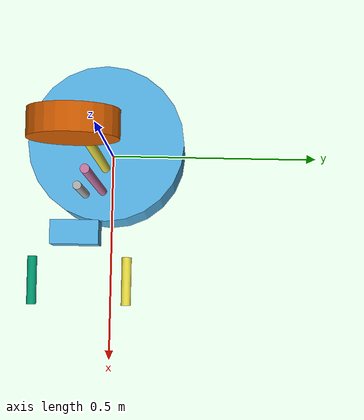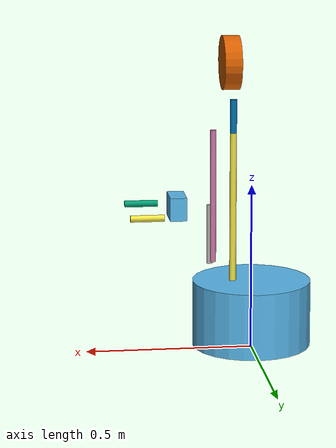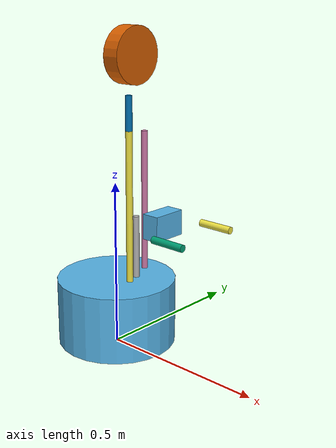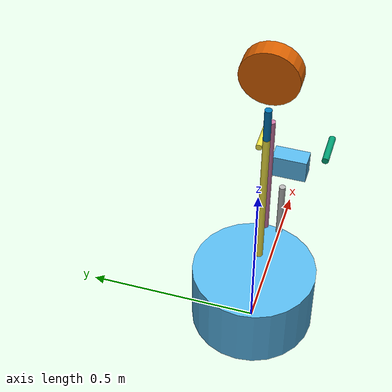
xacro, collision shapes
<?xml version="1.0" encoding="utf-8"?>
<robot name="mini1.5" xmlns:xacro="http://ros.org/wiki/xacro">
  <xacro:include filename="$(find mini_description)/urdf/mini1.5/common_properties.urdf.xacro"/>
  <xacro:include filename="$(find mini_description)/urdf/mini1.5/mini1.5_gazebo.urdf.xacro"/>
  <xacro:include filename="$(find mini_description)/urdf/mini1.5/base.urdf.xacro" />
  <xacro:include filename="$(find mini_description)/urdf/mini1.5/torso_lower.urdf.xacro" />
  <xacro:include filename="$(find mini_description)/urdf/mini1.5/torso_upper.urdf.xacro" />
  <xacro:include filename="$(find mini_description)/urdf/mini1.5/head.urdf.xacro" />
  <xacro:include filename="$(find mini_description)/urdf/mini1.5/god_arm_upper.urdf.xacro" />
  <xacro:include filename="$(find mini_description)/urdf/mini1.5/god_arm_fore.urdf.xacro" />
  <xacro:include filename="$(find mini_description)/urdf/mini1.5/god_wrist_pitch.urdf.xacro" />
  <xacro:include filename="$(find mini_description)/urdf/mini1.5/god_wrist_roll.urdf.xacro" />
  <xacro:include filename="$(find mini_description)/urdf/mini1.5/god_finger_right.urdf.xacro" />
  <xacro:include filename="$(find mini_description)/urdf/mini1.5/god_finger_left.urdf.xacro" />
  <xacro:include filename="$(find mini_description)/urdf/mini1.5/lidar.urdf.xacro" />
  <material name="Red">
    <color rgba="0.8 0.0 0.0 1.0"/>
  </material>

  <!-- Mini Kobuki base  -->
  <base name="base" />

  <!-- Add the Hokuyo lidar -->
  <lidar name="lidar" parent="base" />

  <!-- Add the torso lower -->
  <torso_lower name="torso_lower" parent="base" />

  <!-- Add the torso upper -->
  <torso_upper name="torso_upper" parent="torso_lower" />

  <!-- Add the head -->
  <head name="head" parent="torso_upper" />

  <!-- Add the upper arm -->
  <arm_upper name="arm_upper" parent="torso_upper" />

 <!-- Add the fore arm -->
  <arm_fore name="arm_fore" parent="arm_upper" />

  <!-- Add the wrist pitch -->
  <wrist_pitch name="wrist_pitch" parent="arm_fore" />

  <!-- Add the wrist roll -->
  <wrist_roll  name="wrist_roll" parent="wrist_pitch" />

  <!-- Add the right hand -->
  <finger_right name="finger_right" parent="wrist_roll" />

  <!-- Add the left hand -->
  <finger_left name="finger_left" parent="wrist_roll" />

  <!-- Kobuki Gazebo simulation details -->
  <mini_sim/>
</robot>

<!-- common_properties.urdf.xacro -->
<!--
  Various useful properties such as constants and materials
 -->
<robot name="xacro_properties" xmlns:xacro="http://ros.org/wiki/xacro">
  <xacro:property name="M_PI" value="3.1415926535897931" />
  <xacro:property name="base_mesh_scale" value="0.01" />
  <xacro:property name="mesh_scale" value="0.0095" />

  <xacro:property name="material_white">
    <material name="white">
      <color rgba="1 1 1 1"/>
    </material>
  </xacro:property>
  <xacro:property name="material_grey">
    <material name="grey">
      <color rgba="0.5 0.5 0.5 1"/>
    </material>
  </xacro:property>
  <xacro:property name="material_light_grey">
    <material name="light_grey">
      <color rgba="0.6 0.6 0.6 1"/>
    </material>
  </xacro:property>
  <xacro:property name="material_dark_grey">
    <material name="dark_grey">
      <color rgba="0.3 0.3 0.3 1"/>
    </material>
  </xacro:property>
  <xacro:property name="material_black">
    <material name="black">
      <color rgba="0.1 0.1 0.1 1"/>
    </material>
  </xacro:property>
  <xacro:property name="material_red">
    <material name="red">
      <color rgba="1 0 0 1"/>
    </material>
  </xacro:property>
  <xacro:property name="material_green">
    <material name="green">
      <color rgba="0.0 0.8 0.0 1"/>
    </material>
  </xacro:property>
  <xacro:property name="material_blue">
    <material name="blue">
      <color rgba="0.0 0.0 1.0 1"/>
    </material>
  </xacro:property>
  <xacro:property name="material_grey_blue">
    <material name="grey_blue">
      <color rgba="0.4 0.4 1.0 1"/>
    </material>
  </xacro:property>

  <material name="black">
    <color rgba="0.0 0.0 0.0 1"/>
  </material>

  <material name="silver">
    <color rgba="0.75 0.75 0.75 1"/>
  </material>

  <material name="white">
    <color rgba="1.0 1.0 1.0 1"/>
  </material>

  <material name="yellow">
    <color rgba="1.0 1.0 0.0 1"/>
  </material>

  <material name="orange">
    <color rgba="1.0 0.65 0.0 1"/>
  </material>

</robot>

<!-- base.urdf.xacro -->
<robot name="base" xmlns:xacro="http://ros.org/wiki/xacro">

  <!-- Mini Kobuki -->
  <macro name="base" params="name">
    <link name="base_footprint"/>
    <joint name="base_joint" type="fixed">
      <origin xyz="0 0 0.0102" rpy="0 0 0" />
      <parent link="base_footprint"/>
      <child link="base_link" />
    </joint>
    <link name="base_link">
      <visual>
        <geometry>
          <!-- new mesh -->
          <mesh filename="package://mini_description/meshes/mini1.5/base_mini.dae" scale="${base_mesh_scale} ${base_mesh_scale} ${base_mesh_scale}" />
        </geometry>
        <origin xyz="-0.07 -0.14  -0.03" rpy="0 0 ${M_PI/2}"/>
      </visual>
      <collision>
        <geometry>
	  <cylinder length="0.20" radius="0.178"/>
        </geometry>
	<origin xyz="0.0 0 0.1" rpy="0 0 0"/>
      </collision>
      <inertial>
        <!-- COM experimentally determined -->
        <origin xyz="0.01 0 0"/>
        <mass value="2.4"/> <!-- 2.4/2.6 kg for small/big battery pack -->
        <inertia ixx="0.019995" ixy="0.0" ixz="0.0"
                 iyy="0.019995" iyz="0.0"
                 izz="0.03675" />
      </inertial>
    </link>

    <joint name="wheel_left_joint" type="continuous">
      <parent link="base_link"/>
      <child link="wheel_left_link"/>
      <origin xyz="0.00 ${0.23/2} 0.0250" rpy="${-M_PI/2} 0 0"/>
      <axis xyz="0 0 1"/>
    </joint>
    <link name="wheel_left_link">
      <visual>
        <geometry>
          <mesh filename="package://mini_description/meshes/mini1.5/wheel.dae"/>
        </geometry>
        <origin xyz="0 0 0" rpy="0 0 0"/>
      </visual>
      <collision>
        <geometry>
          <cylinder length="0.0206" radius="0.0352"/>
        </geometry>
        <origin rpy="0 0 0" xyz="0 0 0"/>
      </collision>
      <inertial>
        <mass value="0.01" />
        <origin xyz="0 0 0" />
        <inertia ixx="0.001" ixy="0.0" ixz="0.0"
                 iyy="0.001" iyz="0.0"
                 izz="0.001" />
      </inertial>
    </link>

    <joint name="wheel_right_joint" type="continuous">
      <parent link="base_link"/>
      <child link="wheel_right_link"/>
      <origin xyz="0.00 -${0.23/2} 0.0250" rpy="${-M_PI/2} 0 0"/>
      <axis xyz="0 0 1"/>
    </joint>
    <link name="wheel_right_link">
      <visual>
        <geometry>
          <mesh filename="package://mini_description/meshes/mini1.5/wheel.dae"/>
        </geometry>
        <origin xyz="0 0 0" rpy="0 0 0"/>
      </visual>
      <collision>
        <geometry>
          <cylinder length="0.0206" radius="0.0350"/>
        </geometry>
        <origin rpy="0 0 0" xyz="0 0 0"/>
      </collision>
      <inertial>
        <mass value="0.01" />
        <origin xyz="0 0 0" />
        <inertia ixx="0.001" ixy="0.0" ixz="0.0"
                 iyy="0.001" iyz="0.0"
                 izz="0.001" />
      </inertial>
    </link>

    <joint name="caster_front_joint" type="fixed">
      <parent link="base_link"/>
      <child link="caster_front_link"/>
      <origin xyz="0.115 0.0 0.007" rpy="${-M_PI/2} 0 0"/>
    </joint>
    <link name="caster_front_link">
      <collision>
        <geometry>
          <cylinder length="0.0176" radius="0.017"/>
        </geometry>
        <origin rpy="0 0 0" xyz="0 0 0"/>
      </collision>
      <inertial>
        <mass value="0.01" />
        <origin xyz="0 0 0" />
        <inertia ixx="0.001" ixy="0.0" ixz="0.0"
                 iyy="0.001" iyz="0.0"
                 izz="0.001" />
      </inertial>
    </link>

    <joint name="caster_back_joint" type="fixed">
      <parent link="base_link"/>
      <child link="caster_back_link"/>
      <origin xyz="-0.135 0.0 0.009" rpy="${-M_PI/2} 0 0"/>
    </joint>
    <link name="caster_back_link">
      <collision>
        <geometry>
          <cylinder length="0.0176" radius="0.017"/>
        </geometry>
        <origin rpy="0 0 0" xyz="0 0 0"/>
      </collision>
      <inertial>
        <mass value="0.01" />
        <origin xyz="0 0 0" />
        <inertia ixx="0.001" ixy="0.0" ixz="0.0"
                 iyy="0.001" iyz="0.0"
                 izz="0.001" />
      </inertial>
    </link>

    <!-- Kobuki's sensors -->
    <joint name="gyro_joint" type="fixed">
      <axis xyz="0 1 0"/>
      <origin xyz="0.056 0.062 0.0202" rpy="0 0 0"/>
      <parent link="base_link"/>
      <child link="gyro_link"/>
    </joint>
    <link name="gyro_link">
      <inertial>
        <mass value="0.001"/>
        <origin xyz="0 0 0" rpy="0 0 0"/>
        <inertia ixx="0.0001" ixy="0" ixz="0"
                 iyy="0.000001" iyz="0"
                 izz="0.0001"/>
      </inertial>
    </link>

    <joint name="cliff_sensor_left_joint" type="fixed">
      <origin xyz="0.08734 0.13601 0.0214" rpy="0 ${M_PI/2} 0" />
      <parent link="base_link"/>
      <child link="cliff_sensor_left_link" />
    </joint>
    <link name="cliff_sensor_left_link">
      <inertial>
        <mass value="0.0001" />
        <origin xyz="0 0 0" />
        <inertia ixx="0.0001" ixy="0.0" ixz="0.0"
                 iyy="0.0001" iyz="0.0"
                 izz="0.0001" />
      </inertial>
    </link>

    <joint name="cliff_sensor_right_joint" type="fixed">
      <origin xyz="0.085 -0.13601 0.0214" rpy="0 ${M_PI/2} 0" />
      <parent link="base_link"/>
      <child link="cliff_sensor_right_link" />
    </joint>
    <link name="cliff_sensor_right_link">
      <inertial>
        <mass value="0.0001" />
        <origin xyz="0 0 0" />
        <inertia ixx="0.0001" ixy="0.0" ixz="0.0"
                 iyy="0.0001" iyz="0.0"
                 izz="0.0001" />
      </inertial>
    </link>

    <joint name="cliff_sensor_front_joint" type="fixed">
      <origin xyz="0.156 0.00 0.0214" rpy="0 ${M_PI/2} 0" />
      <parent link="base_link"/>
      <child link="cliff_sensor_front_link" />
    </joint>
    <link name="cliff_sensor_front_link">
      <inertial>
        <mass value="0.0001" />
        <origin xyz="0 0 0" />
        <inertia ixx="0.0001" ixy="0.0" ixz="0.0"
                 iyy="0.0001" iyz="0.0"
                 izz="0.0001" />
      </inertial>
    </link>
  </macro>

</robot>

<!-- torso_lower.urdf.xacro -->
<robot name="torso_lower" xmlns:xacro="http://ros.org/wiki/xacro">

  <!-- Define a number of dimensions using properties -->
  <property name="torso_lower_radius" value="0.01" />
  <property name="torso_lower_length" value="0.5" />
  <property name="torso_lower_offset_x" value="0.057" />
  <property name="torso_lower_offset_y" value="0" />
  <property name="torso_lower_offset_z" value="0.2" />

  <!-- Define the torso -->
  <!--*origin shows it is a block parameter -->
  <macro name="torso_lower" params="parent name">
    <joint name="${name}_joint" type="fixed">
      <!-- insert block parameter named origin -->
      <origin xyz="${torso_lower_offset_x} ${torso_lower_offset_y} ${torso_lower_offset_z}" rpy="0 0 0" />
      <parent link="${parent}_link"/>
      <child link="${name}_link"/>
    </joint>
    <link name="${name}_link">
      <inertial>
	<mass value="2.0" />
	<origin xyz="0 0 0" />
	<inertia ixx="1.0" ixy="0.0" ixz="0.0"
		 iyy="1.0" iyz="0.0"
		 izz="1.0" />
      </inertial>

      <visual>
        <origin xyz="-0.11 -0.135 -0.22" rpy="0 0 ${M_PI/2}" />
	<geometry>
          <mesh filename="package://mini_description/meshes/mini1.5/torso_lower_mini.dae" scale="${mesh_scale} ${mesh_scale} ${mesh_scale}" />
	</geometry>
      </visual>

      <collision>
	<origin xyz="0 0 0.2" rpy="0 0 0" />
        <geometry>
	  <cylinder length="${torso_lower_length}" radius="${torso_lower_radius}" />
        </geometry>
      </collision>
    </link>
  </macro>

</robot>

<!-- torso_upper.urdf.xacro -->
<robot name="torso_upper" xmlns:xacro="http://ros.org/wiki/xacro">

  <!-- Define a number of dimensions using properties -->
  <property name="torso_upper_offset_x" value="0" />
  <property name="torso_upper_offset_y" value="0" />
  <property name="torso_upper_offset_z" value="0.4" />

  <property name="torso_radius" value="0.01" />
  <property name="torso_length" value="0.4" />

  <!-- Define the torso -->
  <macro name="torso_upper" params="parent name">
    <joint name="${name}_joint" type="prismatic">
      <origin xyz="${torso_upper_offset_x} ${torso_upper_offset_y} ${torso_upper_offset_z}" rpy="0 0 0" />
      <axis xyz="0 0 1"/>
      <limit effort="100" lower="0" upper="0.4" velocity="1.0"/>
      <parent link="${parent}_link"/>
      <child link="${name}_link"/>
    </joint>
    <link name="${name}_link">
      <inertial>
        <mass value="1.0" />
        <origin xyz="0 0 0" />
        <inertia ixx="1.0" ixy="0.0" ixz="0.0"
                 iyy="1.0" iyz="0.0"
                 izz="1.0" />
      </inertial>

      <visual>
	<origin xyz="-0.110 -0.136 -0.62" rpy="0 0 ${M_PI/2}" />
	<geometry>
          <mesh filename="package://mini_description/meshes/mini1.5/torso_upper_mini2.dae" scale="${mesh_scale} ${mesh_scale} ${mesh_scale}" />
	</geometry>
      </visual>
      <collision>
        <origin xyz="0 0 0.1" rpy="0 0 0" />
        <geometry>
	  <cylinder length="0.1" radius="${torso_radius}" />
        </geometry>
      </collision>
    </link>
  </macro>

</robot>

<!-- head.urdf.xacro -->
<robot name="head" xmlns:xacro="http://ros.org/wiki/xacro">
  <property name="head_offset_x" value="0.01" />
  <property name="head_offset_y" value="0" />
  <property name="head_offset_z" value="0.14" />
  <property name="head_length" value="0.05" />
  <property name="head_radius" value="0.08" />

  <!-- Define the torso -->
  <macro name="head" params="parent name">
    <joint name="${name}_joint" type="revolute">
      <origin xyz="${head_offset_x} ${head_offset_y} ${head_offset_z}" rpy="0 0 0" />
      <axis xyz="0 1 0"/>
      <limit effort="1.0" lower="-2.617" upper="2.617" velocity="1.571"/>
      <parent link="${parent}_link"/>
      <child link="${name}_link"/>
    </joint>
    <link name="${name}_link">
      <inertial>
        <mass value="1.0" />
        <origin xyz="0 0 0" />
        <inertia ixx="1.0" ixy="0.0" ixz="0.0"
                 iyy="1.0" iyz="0.0"
                 izz="1.0" />
      </inertial>

      <visual>
	<origin xyz="-0.37 -0.136 -0.675" rpy="${M_PI/9} 0 ${M_PI/2}" />
        <geometry>
	  <mesh filename="package://mini_description/meshes/mini1.5/head_mini4.dae" scale="${mesh_scale} ${mesh_scale} ${mesh_scale}" />
        </geometry>
      </visual>
      <collision>
        <origin xyz="0 0 0.12" rpy="${M_PI/2} 0 ${M_PI/2}" />
	<geometry>
          <cylinder length="${head_length}" radius="${head_radius}" />
        </geometry>
      </collision>
    </link>
  </macro>

</robot>

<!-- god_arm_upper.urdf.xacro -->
<robot name="arm_upper" xmlns:xacro="http://ros.org/wiki/xacro">

  <!-- Define a number of dimensions using properties -->
  <property name="arm_upper_offset_x" value="0.06" />
  <property name="arm_upper_offset_y" value="0.0" />
  <property name="arm_upper_offset_z" value="0.1" />
  <property name="arm_upper_radius" value="0.009" />
  <property name="arm_upper_length" value="0.4" />

  <!-- Define the torso -->
  <macro name="arm_upper" params="parent name">
    <joint name="shoulder_joint" type="revolute">
      <origin xyz="${arm_upper_offset_x} ${arm_upper_offset_y} ${arm_upper_offset_z}" rpy="0 0 0" />
      <axis xyz="0 1 0"/>
      <limit effort="1.0" lower="${-M_PI/2}" upper="0" velocity="1.571"/>
      <parent link="${parent}_link"/>
      <child link="${name}_link"/>
    </joint>
    <link name="${name}_link">
      <inertial>
        <mass value="0.5" />
        <origin xyz="0 0 0" />
        <inertia ixx="1.0" ixy="0.0" ixz="0.0"
                 iyy="1.0" iyz="0.0"
                 izz="1.0" />
      </inertial>

      <visual>
	<origin xyz="-0.145 -0.136  -0.725" rpy="${-2*M_PI/180} 0 ${M_PI/2}" />
	<geometry>
	  <mesh filename="package://mini_description/meshes/mini1.5/mini2_arm_upper_module.dae" scale="${mesh_scale} ${mesh_scale} ${mesh_scale}" />
	</geometry>
      </visual>
      <collision>
        <origin xyz="0 0 -0.24" rpy="0 0 0" />
        <geometry>
	  <cylinder length="${arm_upper_length}" radius="${arm_upper_radius}" />
        </geometry>
       </collision>
    </link>
  </macro>

</robot>

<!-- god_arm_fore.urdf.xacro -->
<robot name="arm_fore" xmlns:xacro="http://ros.org/wiki/xacro">

  <!-- Define a number of dimensions using properties -->
  <property name="arm_fore_offset_x" value="0.0" />
  <property name="arm_fore_offset_y" value="0" />
  <property name="arm_fore_offset_z" value="-0.445" />
  <property name="arm_fore_radius" value="0.009" />
  <property name="arm_fore_length" value="0.18" />

  <!-- Define the torso -->
  <macro name="arm_fore" params="parent name">
    <joint name="elbow_joint" type="revolute">
      <origin xyz="${arm_fore_offset_x} ${arm_fore_offset_y} ${arm_fore_offset_z}" rpy="0 0 0" />
      <axis xyz="0 1 0"/>
      <limit effort="1.0" lower="${-M_PI/2}" upper="${M_PI/2}" velocity="1.571"/>
      <parent link="${parent}_link"/>
      <child link="${name}_link"/>
    </joint>
    <link name="${name}_link">
      <inertial>
        <mass value="0.1" />
        <origin xyz="0 0 0" />
        <inertia ixx="1.0" ixy="0.0" ixz="0.0"
                 iyy="1.0" iyz="0.0"
                 izz="1.0" />
      </inertial>

      <visual>
        <origin xyz="-0.065 -0.136  -0.31" rpy="${-17.5*M_PI/180} 0  ${M_PI/2}" />
	<geometry>
	  <mesh filename="package://mini_description/meshes/mini1.5/mini2_arm_fore_module.dae" scale="${mesh_scale} ${mesh_scale} ${mesh_scale}" />
	</geometry>
      </visual>
      <collision>
        <origin xyz="0.005  -0.04 0.08" rpy="0 0 0" />
        <geometry>
	  <cylinder length="${arm_fore_length}" radius="${arm_fore_radius}" />
        </geometry>
      </collision>
    </link>
  </macro>

</robot>

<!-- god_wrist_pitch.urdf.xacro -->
<robot name="wrist_pitch" xmlns:xacro="http://ros.org/wiki/xacro">

  <!-- Define a number of dimensions using properties -->
  <property name="wrist_offset_x" value="0.004" />
  <property name="wrist_offset_y" value="-0.04" />
  <property name="wrist_offset_z" value="0.148" />
  <property name="wrist_radius" value="0.025" />
  <property name="wrist_length" value="0.05" />

  <!-- Define the wrist pitch -->
  <macro name="wrist_pitch" params="parent name">
    <joint name="wrist_pitch_joint" type="revolute">
      <origin xyz="${wrist_offset_x} ${wrist_offset_y} ${wrist_offset_z}" rpy="0 0 0" />
      <axis xyz="0 1 0"/>
      <limit effort="1.0" lower="${-M_PI/2}" upper="${M_PI/2}" velocity="1.571"/>
      <parent link="${parent}_link"/>
      <child link="${name}_link"/>
    </joint>

    <link name="${name}_link">
      <inertial>
        <mass value="0.1" />
        <origin xyz="0 0 0" />
        <inertia ixx="1.0" ixy="0.0" ixz="0.0"
                 iyy="1.0" iyz="0.0"
                 izz="1.0" />
      </inertial>
      <visual>
	<origin xyz="-0.049 -0.097  -0.465" rpy="${-20*M_PI/180} 0 ${M_PI/2}" />
	<geometry>
	  <mesh filename="package://mini_description/meshes/mini1.5/mini2_wrist_pitch_module.dae" scale="${mesh_scale} ${mesh_scale} ${mesh_scale}" />
	</geometry>
      </visual>
    </link>
  </macro>
</robot>

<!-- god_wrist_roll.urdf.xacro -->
<robot name="wrist_roll" xmlns:xacro="http://ros.org/wiki/xacro">

  <!-- Define a number of dimensions using properties -->
  <property name="wrist_roll_offset_x" value="0.0" />
  <property name="wrist_roll_offset_y" value="0.0" />
  <property name="wrist_roll_offset_z" value="0.0" />

  <property name="wrist_roll_length" value="0.05" />
  <property name="wrist_roll_width" value="0.1" />
  <property name="wrist_roll_height" value="0.07" />

  <!-- Define the wrist roll -->
  <macro name="wrist_roll" params="parent name">
    <joint name="wrist_roll_joint" type="revolute">
      <origin xyz="${wrist_roll_offset_x} ${wrist_roll_offset_y} ${wrist_roll_offset_z}" rpy="0 0 0" />
      <axis xyz="1 0 0"/>
      <limit effort="1.0" lower="${-M_PI/2}" upper="${M_PI/2}" velocity="1.571"/>
      <parent link="${parent}_link"/>
      <child link="${name}_link"/>
    </joint>

    <link name="${name}_link">
      <inertial>
        <mass value="0.05" />
        <origin xyz="0 0 0" />
        <inertia ixx="0.01" ixy="0.0" ixz="0.0"
                 iyy="0.01" iyz="0.0"
                 izz="0.01" />
      </inertial>
      <visual>
	<origin xyz="-0.049 -0.097  -0.465" rpy="${-20*M_PI/180} 0 ${M_PI/2}" />
	<geometry>
	  <mesh filename="package://mini_description/meshes/mini1.5/mini2_wrist_roll_module.dae" scale="${mesh_scale} ${mesh_scale} ${mesh_scale}" />
	</geometry>
      </visual>
      <collision>
	<origin xyz="0.1 0 0.02" rpy="0 0 0" />
	<geometry>
          <box size="${wrist_roll_length} ${wrist_roll_width} ${wrist_roll_height}" />
	</geometry>
      </collision>
    </link>
  </macro>
</robot>

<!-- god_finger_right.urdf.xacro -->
<robot name="finger_right" xmlns:xacro="http://ros.org/wiki/xacro">

  <!-- Define a number of dimensions using properties -->
  <property name="finger_right_offset_x" value="0.112" />
  <property name="finger_right_offset_y" value="-0.048" />
  <property name="finger_right_offset_z" value="0.01" />
  <property name="finger_radius" value="0.025" />
  <property name="finger_length" value="0.1" />

  <!-- Define the torso -->
  <macro name="finger_right" params="parent name">
    <joint name="${name}_joint" type="revolute">
      <origin xyz="${finger_right_offset_x} ${finger_right_offset_y} ${finger_right_offset_z}" rpy="0 0 0" />
      <axis xyz="0 0 1"/>
      <limit effort="1.0" lower="-1.5" upper="1.5" velocity="1.571"/>
      <parent link="${parent}_link"/>
      <child link="${name}_link"/>
    </joint>
    <link name="${name}_link">
      <inertial>
        <mass value="0.01" />
        <origin xyz="0 0 0" />
        <inertia ixx="1.0" ixy="0.0" ixz="0.0"
                 iyy="1.0" iyz="0.0"
                 izz="1.0" />
      </inertial>

      <visual>
	<origin xyz="-0.15 -0.05  -0.475" rpy="${-20*M_PI/180} 0 ${M_PI/2}" />
	<geometry>
	  <mesh filename="package://mini_description/meshes/mini1.5/mini2_finger_right_module.dae" scale="${mesh_scale} ${mesh_scale} ${mesh_scale}" />
	</geometry>
      </visual>
      <collision>
	<origin xyz="${finger_left_offset_x-0.025} ${finger_left_offset_y-0.09}
                     ${finger_left_offset_z-0.01}" rpy="0 ${M_PI/2} 0" />

        <geometry>
          <cylinder length="${finger_length}" radius="${finger_radius}" />
        </geometry>
      </collision>

    </link>
  </macro>

</robot>

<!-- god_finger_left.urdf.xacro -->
<robot name="finger_left" xmlns:xacro="http://ros.org/wiki/xacro">

  <!-- Define a number of dimensions using properties -->
  <property name="finger_left_offset_x" value="0.112" />
  <property name="finger_left_offset_y" value="0.048" />
  <property name="finger_left_offset_z" value="0.01" />
  <property name="finger_radius" value="0.01" />
  <property name="finger_length" value="0.1" />

  <!-- Define the torso -->
  <macro name="finger_left" params="parent name">
    <joint name="${name}_joint" type="revolute">
      <origin xyz="${finger_left_offset_x} ${finger_left_offset_y} ${finger_left_offset_z}" rpy="0 0 0" />
      <axis xyz="0 0 1"/>
      <limit effort="1.0" lower="-1.5" upper="1.5" velocity="1.571"/>
      <parent link="${parent}_link"/>
      <child link="${name}_link"/>
    </joint>
    <link name="${name}_link">
      <inertial>
        <mass value="0.01" />
        <origin xyz="0 0 0" />
        <inertia ixx="1.0" ixy="0.0" ixz="0.0"
                 iyy="1.0" iyz="0.0"
                 izz="1.0" />
      </inertial>

      <visual>
	<origin xyz="-0.15 -0.14 -0.475" rpy="${-20*M_PI/180} 0 ${M_PI/2}" />
	<geometry>
	  <mesh filename="package://mini_description/meshes/mini1.5/mini2_finger_left_module.dae" scale="${mesh_scale} ${mesh_scale} ${mesh_scale}" />
	</geometry>
      </visual>
      <collision>
      <origin xyz="${finger_left_offset_x-0.025} ${finger_left_offset_y + 0.01}
                   ${finger_left_offset_z-0.01}" rpy="0 ${M_PI/2} 0" />

      <geometry>
          <cylinder length="${finger_length}" radius="${finger_radius}" />
      </geometry>
    </collision>

    </link>
  </macro>

</robot>

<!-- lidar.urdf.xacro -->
<robot name="lidar" xmlns:xacro="http://ros.org/wiki/xacro">
  <property name="lidar_offset_x" value="0.13" />
  <property name="lidar_offset_y" value="0" />
  <property name="lidar_offset_z" value="0.14" />

  <!-- A box-and-cylinder model of the Hokuyo URG-30LX laser scanner -->

  <!-- Define the laser macro -->
  <macro name="lidar" params="parent name">
    <joint name="${name}_joint" type="fixed">
      <origin xyz="${lidar_offset_x} ${lidar_offset_y} ${lidar_offset_z}" rpy="0 0 0" />
      <parent link="${parent}_link"/>
      <child link="${name}_link"/>
    </joint>
   <link name="${name}_link">
     <visual>
       <origin xyz="0 0 -0.05" rpy="0 0 0" />
       <geometry>
         <mesh filename="package://mini_description/meshes/mini1.5/lidar.dae"  scale="1 1 1" />
       </geometry>
     </visual>
     <collision>
       <origin xyz="0 0 0" rpy="0 0 0" />
       <geometry>
         <box size="0.05 0.05 0.07" />
       </geometry>
     </collision>
     <inertial>
       <origin xyz="0 0 0" rpy="0 0 0" />
       <mass value="0.1" />
       <inertia ixx="0.001" ixy="0.0" ixz="0.0"
                   iyy="0.001" iyz="0.0"
                   izz="0.001" />
     </inertial>
   </link>
  </macro>
 </robot>
